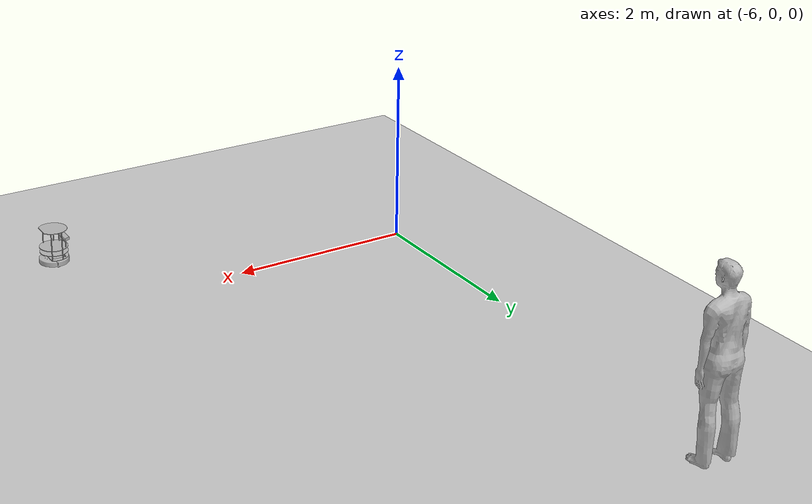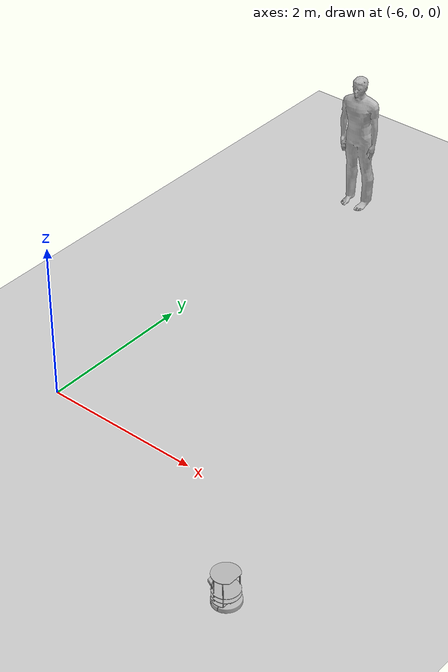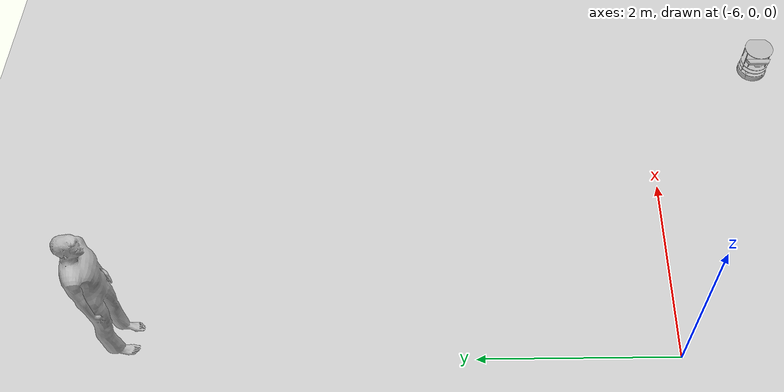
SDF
<sdf version="1.6">
 <world name="default">
  <light name="sun" type="directional">
   <pose>0 0 10 0 -0 0</pose>
   <diffuse>0.8 0.8 0.8 1</diffuse>
   <specular>0.1 0.1 0.1 1</specular>
   <attenuation>
    <range>1000</range>
    <constant>0.9</constant>
    <linear>0.01</linear>
    <quadratic>0.001</quadratic>
   </attenuation>
   <direction>-0.5 0.5 -1</direction>
  </light>
  <model name="ground_plane">
   <static>1</static>
   <link name="link">
    <collision name="collision">
     <geometry><plane><normal>0 0 1</normal><size>100 100</size></plane></geometry>
     <surface><friction><ode><mu>100</mu><mu2>50</mu2></ode></friction></surface>
    </collision>
    <visual name="visual">
     <cast_shadows>0</cast_shadows>
     <geometry><plane><normal>0 0 1</normal><size>100 100</size></plane></geometry>
     <material>
      <script><uri>file://media/materials/scripts/gazebo.material</uri><name>Gazebo/Grey</name></script>
     </material>
    </visual>
   </link>
  </model>
  <gravity>0 0 -9.8</gravity>
  <magnetic_field>6e-06 2.3e-05 -4.2e-05</magnetic_field>
  <atmosphere type="adiabatic"/>
  <physics name="default_physics" default="0" type="ode">
   <max_step_size>0.001</max_step_size>
   <real_time_factor>1</real_time_factor>
   <real_time_update_rate>1000</real_time_update_rate>
  </physics>
  <scene><ambient>0.4 0.4 0.4 1</ambient><background>0.7 0.7 0.7 1</background><shadows>1</shadows></scene>
  <spherical_coordinates>
   <surface_model>EARTH_WGS84</surface_model>
   <latitude_deg>0</latitude_deg>
   <longitude_deg>0</longitude_deg>
   <elevation>0</elevation>
   <heading_deg>0</heading_deg>
  </spherical_coordinates>
  <model name="person_standing">
   <link name="link">
    <inertial>
     <pose>0 -0.1 0.95 0 -0 0</pose>
     <mass>80</mass>
     <inertia><ixx>24.88</ixx><ixy>0</ixy><ixz>0</ixz><iyy>25.73</iyy><iyz>0</iyz><izz>2.48</izz></inertia>
    </inertial>
    <collision name="bottom">
     <pose>0 -0.1 0.01 0 -0 0</pose>
     <geometry><box><size>0.5 0.35 0.02</size></box></geometry>
    </collision>
    <collision name="person">
     <pose>0 0 0.02 0.04 -0 0</pose>
     <geometry><mesh><uri>model://person_standing/meshes/standing.dae</uri><scale>1 1 1</scale></mesh></geometry>
    </collision>
    <visual name="visual">
     <pose>0 0 0.02 0.04 -0 0</pose>
     <geometry><mesh><uri>model://person_standing/meshes/standing.dae</uri><scale>1 1 1</scale></mesh></geometry>
    </visual>
   </link>
   <pose>-5.7513 5.51558 -1e-06 -1e-06 1e-06 -0.000272</pose>
  </model>
  <model name="turtlebot">
   <link name="rack">
    <inertial>
     <pose>0.001453 -0.000453 0.029787 0 -0 0</pose>
     <inertia>
      <ixx>0.05864</ixx>
      <ixy>0.000124</ixy>
      <ixz>0.000615</ixz>
      <iyy>0.058786</iyy>
      <iyz>1.4e-05</iyz>
      <izz>1.53244</izz>
     </inertia>
     <mass>2.234</mass>
    </inertial>
    <collision name="plate_0_collision">
     <pose>-0.04334 0 0.084757 0 -0 0</pose>
     <geometry><box><size>0.233502 0.314845 0.006401</size></box></geometry>
    </collision>
    <visual name="plate_0_visual">
     <pose>-0.04334 0 0.084757 0 -0 0</pose>
     <geometry><mesh><uri>model://turtlebot/meshes/plate_0_logo.dae</uri><scale>1 1 1</scale></mesh></geometry>
    </visual>
    <collision name="plate_1_collision">
     <pose>-0.00266 0 0.141907 0 -0 0</pose>
     <geometry><box><size>0.314856 0.314856 0.006401</size></box></geometry>
    </collision>
    <visual name="plate_1_visual">
     <pose>-0.00266 0 0.141907 0 -0 0</pose>
     <geometry><mesh><uri>model://turtlebot/meshes/plate_1_logo.dae</uri><scale>1 1 1</scale></mesh></geometry>
    </visual>
    <collision name="plate_2_collision">
     <pose>-0.00266 0 0.199108 0 -0 0</pose>
     <geometry><box><size>0.314856 0.314856 0.006401</size></box></geometry>
    </collision>
    <visual name="plate_2_visual">
     <pose>-0.00266 0 0.199108 0 -0 0</pose>
     <geometry><mesh><uri>model://turtlebot/meshes/plate_1_logo.dae</uri><scale>1 1 1</scale></mesh></geometry>
    </visual>
    <collision name="plate_3_collision">
     <pose>-0.01582 0 0.405457 0 -0 0</pose>
     <geometry><box><size>0.288 0.315 0.006401</size></box></geometry>
    </collision>
    <visual name="plate_3_visual">
     <pose>-0.01582 0 0.405457 0 -0 0</pose>
     <geometry><mesh><uri>model://turtlebot/meshes/plate_2_logo.dae</uri><scale>1 1 1</scale></mesh></geometry>
    </visual>
    <collision name="spacer_0_collision">
     <pose>-0.00254 0.111468 0.079992 0 -0 0</pose>
     <geometry><cylinder><radius>0.0127</radius><length>0.003175</length></cylinder></geometry>
    </collision>
    <visual name="spacer_0_visual">
     <pose>-0.00254 0.111468 0.079992 0 -0 0</pose>
     <geometry>
      <mesh><uri>model://turtlebot/meshes/68-02403-125_Spacer.dae</uri><scale>1 1 1</scale></mesh>
     </geometry>
    </visual>
    <collision name="spacer_1_collision">
     <pose>-0.00254 -0.111468 0.079992 0 -0 0</pose>
     <geometry><cylinder><radius>0.0127</radius><length>0.003175</length></cylinder></geometry>
    </collision>
    <visual name="spacer_1_visual">
     <pose>-0.00254 -0.111468 0.079992 0 -0 0</pose>
     <geometry>
      <mesh><uri>model://turtlebot/meshes/68-02403-125_Spacer.dae</uri><scale>1 1 1</scale></mesh>
     </geometry>
    </visual>
    <collision name="spacer_2_collision">
     <pose>-0.07239 -0.111468 0.079992 0 -0 0</pose>
     <geometry><cylinder><radius>0.0127</radius><length>0.003175</length></cylinder></geometry>
    </collision>
    <visual name="spacer_2_visual">
     <pose>-0.07239 -0.111468 0.079992 0 -0 0</pose>
     <geometry>
      <mesh><uri>model://turtlebot/meshes/68-02403-125_Spacer.dae</uri><scale>1 1 1</scale></mesh>
     </geometry>
    </visual>
    <collision name="spacer_3_collision">
     <pose>-0.07239 0.111468 0.079992 0 -0 0</pose>
     <geometry><cylinder><radius>0.0127</radius><length>0.003175</length></cylinder></geometry>
    </collision>
    <visual name="spacer_3_visual">
     <pose>-0.07239 0.111468 0.079992 0 -0 0</pose>
     <geometry>
      <mesh><uri>model://turtlebot/meshes/68-02403-125_Spacer.dae</uri><scale>1 1 1</scale></mesh>
     </geometry>
    </visual>
    <collision name="standoff_2in_0_collision">
     <pose>0.06764 0.13142 0.08798 0 -0 0</pose>
     <geometry><cylinder><radius>0.0381</radius><length>0.0635</length></cylinder></geometry>
    </collision>
    <visual name="standoff_2in_0_visual">
     <pose>0.06764 0.13142 0.08798 0 -0 0</pose>
     <geometry>
      <mesh>
       <uri>model://turtlebot/meshes/68-04552-2000-RA_Turtlebot_M-F_Standoff.dae</uri>
       <scale>1 1 1</scale>
      </mesh>
     </geometry>
    </visual>
    <collision name="standoff_2in_1_collision">
     <pose>0.06764 -0.13142 0.08798 0 -0 0</pose>
     <geometry><cylinder><radius>0.0381</radius><length>0.0635</length></cylinder></geometry>
    </collision>
    <visual name="standoff_2in_1_visual">
     <pose>0.06764 -0.13142 0.08798 0 -0 0</pose>
     <geometry>
      <mesh>
       <uri>model://turtlebot/meshes/68-04552-2000-RA_Turtlebot_M-F_Standoff.dae</uri>
       <scale>1 1 1</scale>
      </mesh>
     </geometry>
    </visual>
    <collision name="standoff_2in_2_collision">
     <pose>-0.052832 -0.13142 0.08798 0 -0 0</pose>
     <geometry><cylinder><radius>0.0381</radius><length>0.0635</length></cylinder></geometry>
    </collision>
    <visual name="standoff_2in_2_visual">
     <pose>-0.052832 -0.13142 0.08798 0 -0 0</pose>
     <geometry>
      <mesh>
       <uri>model://turtlebot/meshes/68-04552-2000-RA_Turtlebot_M-F_Standoff.dae</uri>
       <scale>1 1 1</scale>
      </mesh>
     </geometry>
    </visual>
    <collision name="standoff_2in_3_collision">
     <pose>-0.052832 0.13142 0.08798 0 -0 0</pose>
     <geometry><cylinder><radius>0.0381</radius><length>0.0635</length></cylinder></geometry>
    </collision>
    <visual name="standoff_2in_3_visual">
     <pose>-0.052832 0.13142 0.08798 0 -0 0</pose>
     <geometry>
      <mesh>
       <uri>model://turtlebot/meshes/68-04552-2000-RA_Turtlebot_M-F_Standoff.dae</uri>
       <scale>1 1 1</scale>
      </mesh>
     </geometry>
    </visual>
    <collision name="standoff_2in_4_collision">
     <pose>0.06764 0.13142 0.14513 0 -0 0</pose>
     <geometry><cylinder><radius>0.0381</radius><length>0.0635</length></cylinder></geometry>
    </collision>
    <visual name="standoff_2in_4_visual">
     <pose>0.06764 0.13142 0.14513 0 -0 0</pose>
     <geometry>
      <mesh>
       <uri>model://turtlebot/meshes/68-04552-2000-RA_Turtlebot_M-F_Standoff.dae</uri>
       <scale>1 1 1</scale>
      </mesh>
     </geometry>
    </visual>
    <collision name="standoff_2in_5_collision">
     <pose>0.06764 -0.13142 0.14513 0 -0 0</pose>
     <geometry><cylinder><radius>0.0381</radius><length>0.0635</length></cylinder></geometry>
    </collision>
    <visual name="standoff_2in_5_visual">
     <pose>0.06764 -0.13142 0.14513 0 -0 0</pose>
     <geometry>
      <mesh>
       <uri>model://turtlebot/meshes/68-04552-2000-RA_Turtlebot_M-F_Standoff.dae</uri>
       <scale>1 1 1</scale>
      </mesh>
     </geometry>
    </visual>
    <collision name="standoff_2in_6_collision">
     <pose>-0.052832 -0.13142 0.14513 0 -0 0</pose>
     <geometry><cylinder><radius>0.0381</radius><length>0.0635</length></cylinder></geometry>
    </collision>
    <visual name="standoff_2in_6_visual">
     <pose>-0.052832 -0.13142 0.14513 0 -0 0</pose>
     <geometry>
      <mesh>
       <uri>model://turtlebot/meshes/68-04552-2000-RA_Turtlebot_M-F_Standoff.dae</uri>
       <scale>1 1 1</scale>
      </mesh>
     </geometry>
    </visual>
    <collision name="standoff_2in_7_collision">
     <pose>-0.052832 0.13142 0.14513 0 -0 0</pose>
     <geometry><cylinder><radius>0.0381</radius><length>0.0635</length></cylinder></geometry>
    </collision>
    <visual name="standoff_2in_7_visual">
     <pose>-0.052832 0.13142 0.14513 0 -0 0</pose>
     <geometry>
      <mesh>
       <uri>model://turtlebot/meshes/68-04552-2000-RA_Turtlebot_M-F_Standoff.dae</uri>
       <scale>1 1 1</scale>
      </mesh>
     </geometry>
    </visual>
    <collision name="standoff_8in_0_collision">
     <pose>0.06764 0.13142 0.20228 0 -0 0</pose>
     <geometry><cylinder><radius>0.011113</radius><length>0.2032</length></cylinder></geometry>
    </collision>
    <visual name="standoff_8in_0_visual">
     <pose>0.06764 0.13142 0.20228 0 -0 0</pose>
     <geometry>
      <mesh>
       <uri>model://turtlebot/meshes/68-02421-8000-RA_Turtlebot_F-F_Standoff.dae</uri>
       <scale>1 1 1</scale>
      </mesh>
     </geometry>
    </visual>
    <collision name="standoff_8in_1_collision">
     <pose>0.06764 -0.13142 0.20228 0 -0 0</pose>
     <geometry><cylinder><radius>0.011113</radius><length>0.2032</length></cylinder></geometry>
    </collision>
    <visual name="standoff_8in_1_visual">
     <pose>0.06764 -0.13142 0.20228 0 -0 0</pose>
     <geometry>
      <mesh>
       <uri>model://turtlebot/meshes/68-02421-8000-RA_Turtlebot_F-F_Standoff.dae</uri>
       <scale>1 1 1</scale>
      </mesh>
     </geometry>
    </visual>
    <collision name="standoff_8in_2_collision">
     <pose>-0.052832 -0.13142 0.20228 0 -0 0</pose>
     <geometry><cylinder><radius>0.011113</radius><length>0.2032</length></cylinder></geometry>
    </collision>
    <visual name="standoff_8in_2_visual">
     <pose>-0.052832 -0.13142 0.20228 0 -0 0</pose>
     <geometry>
      <mesh>
       <uri>model://turtlebot/meshes/68-02421-8000-RA_Turtlebot_F-F_Standoff.dae</uri>
       <scale>1 1 1</scale>
      </mesh>
     </geometry>
    </visual>
    <collision name="standoff_8in_3_collision">
     <pose>-0.052832 0.13142 0.20228 0 -0 0</pose>
     <geometry><cylinder><radius>0.011113</radius><length>0.2032</length></cylinder></geometry>
    </collision>
    <visual name="standoff_8in_3_visual">
     <pose>-0.052832 0.13142 0.20228 0 -0 0</pose>
     <geometry>
      <mesh>
       <uri>model://turtlebot/meshes/68-02421-8000-RA_Turtlebot_F-F_Standoff.dae</uri>
       <scale>1 1 1</scale>
      </mesh>
     </geometry>
    </visual>
    <collision name="standoff_kinect_0_collision">
     <pose>-0.105098 0.098 0.202308 0 -0 0</pose>
     <geometry><cylinder><radius>0.001111</radius><length>0.008585</length></cylinder></geometry>
    </collision>
    <visual name="standoff_kinect_0_visual">
     <pose>-0.105098 0.098 0.202308 0 -0 0</pose>
     <geometry>
      <mesh><uri>model://turtlebot/meshes/68-04556-RA_Kinect_Standoff_Assy.dae</uri><scale>1 1 1</scale></mesh>
     </geometry>
    </visual>
    <collision name="standoff_kinect_1_collision">
     <pose>-0.105098 -0.098 0.202308 0 -0 0</pose>
     <geometry><cylinder><radius>0.001111</radius><length>0.008585</length></cylinder></geometry>
    </collision>
    <visual name="standoff_kinect_1_visual">
     <pose>-0.105098 -0.098 0.202308 0 -0 0</pose>
     <geometry>
      <mesh><uri>model://turtlebot/meshes/68-04556-RA_Kinect_Standoff_Assy.dae</uri><scale>1 1 1</scale></mesh>
     </geometry>
    </visual>
    <sensor name="laser" type="ray">
     <pose>-0.065 0 0.092 0 -0 0</pose>
     <ray>
      <scan>
       <horizontal>
        <samples>180</samples>
        <resolution>1</resolution>
        <min_angle>-2.26893</min_angle>
        <max_angle>2.26893</max_angle>
       </horizontal>
       <vertical><samples>1</samples><min_angle>0</min_angle><max_angle>0</max_angle></vertical>
      </scan>
      <range><min>0.08</min><max>10</max><resolution>0.01</resolution></range>
     </ray>
     <update_rate>20</update_rate>
    </sensor>
   </link>
   <link name="create::base">
    <inertial>
     <pose>0.001453 -0.000453 0.029787 0 -0 0</pose>
     <inertia>
      <ixx>0.05864</ixx>
      <ixy>0.000124</ixy>
      <ixz>0.000615</ixz>
      <iyy>0.058786</iyy>
      <iyz>1.4e-05</iyz>
      <izz>1.53244</izz>
     </inertia>
     <mass>2.234</mass>
    </inertial>
    <collision name="base_collision">
     <pose>0 0 0.0478 0 -0 0</pose>
     <geometry><cylinder><radius>0.016495</radius><length>0.061163</length></cylinder></geometry>
    </collision>
    <visual name="base_visual">
     <pose>0 0 0.0478 0 -0 0</pose>
     <geometry><mesh><uri>model://create/meshes/create_body.dae</uri><scale>1 1 1</scale></mesh></geometry>
    </visual>
    <collision name="front_wheel_collision">
     <pose>0.13 0 0.017 -0 1.5707 1.5707</pose>
     <geometry><sphere><radius>0.018</radius></sphere></geometry>
     <surface>
      <friction><ode><mu>0</mu><mu2>0</mu2><fdir1>0 0 0</fdir1><slip1>0</slip1><slip2>0</slip2></ode></friction>
     </surface>
    </collision>
    <visual name="front_wheel_visual">
     <pose>0.13 0 0.017 -0 1.5707 1.5707</pose>
     <geometry><sphere><radius>0.009</radius></sphere></geometry>
    </visual>
    <collision name="rear_wheel_collision">
     <pose>-0.13 0 0.017 -0 1.5707 1.5707</pose>
     <geometry><sphere><radius>0.015</radius></sphere></geometry>
     <surface>
      <friction><ode><mu>0</mu><mu2>0</mu2><fdir1>0 0 0</fdir1><slip1>0</slip1><slip2>0</slip2></ode></friction>
     </surface>
    </collision>
    <visual name="rear_wheel_visual">
     <pose>-0.13 0 0.017 -0 1.5707 1.5707</pose>
     <geometry><sphere><radius>0.0075</radius></sphere></geometry>
    </visual>
    <sensor name="left_cliff_sensor" type="ray">
     <pose>0.07 0.14 0.027 0 1.57079 0</pose>
     <ray>
      <scan>
       <horizontal>
        <samples>1</samples>
        <resolution>1</resolution>
        <min_angle>0</min_angle>
        <max_angle>0</max_angle>
       </horizontal>
       <vertical><samples>1</samples><min_angle>0</min_angle><max_angle>0</max_angle></vertical>
      </scan>
      <range><min>0.01</min><max>0.04</max><resolution>0.1</resolution></range>
     </ray>
    </sensor>
    <sensor name="leftfront_cliff_sensor" type="ray">
     <pose>0.15 0.04 0.027 0 1.57079 0</pose>
     <ray>
      <scan>
       <horizontal>
        <samples>1</samples>
        <resolution>1</resolution>
        <min_angle>0</min_angle>
        <max_angle>0</max_angle>
       </horizontal>
       <vertical><samples>1</samples><min_angle>0</min_angle><max_angle>0</max_angle></vertical>
      </scan>
      <range><min>0.01</min><max>0.04</max><resolution>0.1</resolution></range>
     </ray>
    </sensor>
    <sensor name="right_cliff_sensor" type="ray">
     <pose>0.07 -0.14 0.027 0 1.57079 0</pose>
     <ray>
      <scan>
       <horizontal>
        <samples>1</samples>
        <resolution>1</resolution>
        <min_angle>0</min_angle>
        <max_angle>0</max_angle>
       </horizontal>
       <vertical><samples>1</samples><min_angle>0</min_angle><max_angle>0</max_angle></vertical>
      </scan>
      <range><min>0.01</min><max>0.04</max><resolution>0.1</resolution></range>
     </ray>
    </sensor>
    <sensor name="rightfront_cliff_sensor" type="ray">
     <pose>0.15 -0.04 0.027 0 1.57079 0</pose>
     <ray>
      <scan>
       <horizontal>
        <samples>1</samples>
        <resolution>1</resolution>
        <min_angle>0</min_angle>
        <max_angle>0</max_angle>
       </horizontal>
       <vertical><samples>1</samples><min_angle>0</min_angle><max_angle>0</max_angle></vertical>
      </scan>
      <range><min>0.01</min><max>0.04</max><resolution>0.1</resolution></range>
     </ray>
    </sensor>
    <sensor name="wall_sensor" type="ray">
     <pose>0.09 -0.12 0.059 0 0 -1</pose>
     <ray>
      <scan>
       <horizontal>
        <samples>1</samples>
        <resolution>1</resolution>
        <min_angle>0</min_angle>
        <max_angle>0</max_angle>
       </horizontal>
       <vertical><samples>1</samples><min_angle>0</min_angle><max_angle>0</max_angle></vertical>
      </scan>
      <range><min>0.016</min><max>0.04</max><resolution>0.1</resolution></range>
     </ray>
    </sensor>
   </link>
   <link name="create::left_wheel">
    <pose>0 0.13 0.032 0 -0 0</pose>
    <inertial>
     <inertia><ixx>0.001</ixx><ixy>0</ixy><ixz>0</ixz><iyy>0.001</iyy><iyz>0</iyz><izz>0.001</izz></inertia>
     <mass>0.01</mass>
    </inertial>
    <collision name="collision">
     <pose>0 0 0 -0 1.5707 1.5707</pose>
     <geometry><cylinder><radius>0.033</radius><length>0.023</length></cylinder></geometry>
     <surface>
      <friction><ode><mu>10</mu><mu2>10</mu2><fdir1>0 0 0</fdir1><slip1>0</slip1><slip2>0</slip2></ode></friction>
     </surface>
    </collision>
    <visual name="visual">
     <pose>0 0 0 -0 1.5707 1.5707</pose>
     <geometry><cylinder><radius>0.033</radius><length>0.023</length></cylinder></geometry>
    </visual>
   </link>
   <link name="create::right_wheel">
    <pose>0 -0.13 0.032 0 -0 0</pose>
    <inertial>
     <inertia><ixx>0.001</ixx><ixy>0</ixy><ixz>0</ixz><iyy>0.001</iyy><iyz>0</iyz><izz>0.001</izz></inertia>
     <mass>0.01</mass>
    </inertial>
    <collision name="collision">
     <pose>0 0 0 -0 1.5707 1.5707</pose>
     <geometry><cylinder><radius>0.033</radius><length>0.023</length></cylinder></geometry>
     <surface>
      <friction><ode><mu>10</mu><mu2>10</mu2><fdir1>0 0 0</fdir1><slip1>0</slip1><slip2>0</slip2></ode></friction>
     </surface>
    </collision>
    <visual name="visual">
     <pose>0 0 0 -0 1.5707 1.5707</pose>
     <geometry><cylinder><radius>0.033</radius><length>0.023</length></cylinder></geometry>
    </visual>
   </link>
   <joint name="create::left_wheel" type="revolute">
    <parent>create::base</parent>
    <child>create::left_wheel</child>
    <axis>
     <xyz>0 1 0</xyz>
     <use_parent_model_frame>1</use_parent_model_frame>
     <limit><lower>-1e+16</lower><upper>1e+16</upper></limit>
     <dynamics><spring_reference>0</spring_reference><spring_stiffness>0</spring_stiffness></dynamics>
    </axis>
   </joint>
   <joint name="create::right_wheel" type="revolute">
    <parent>create::base</parent>
    <child>create::right_wheel</child>
    <axis>
     <xyz>0 1 0</xyz>
     <use_parent_model_frame>1</use_parent_model_frame>
     <limit><lower>-1e+16</lower><upper>1e+16</upper></limit>
     <dynamics><spring_reference>0</spring_reference><spring_stiffness>0</spring_stiffness></dynamics>
    </axis>
   </joint>
   <link name="kinect::link">
    <inertial>
     <mass>0.1</mass>
     <inertia><ixx>1</ixx><ixy>0</ixy><ixz>0</ixz><iyy>1</iyy><iyz>0</iyz><izz>1</izz></inertia>
    </inertial>
    <collision name="collision"><geometry><box><size>0.073 0.276 0.072</size></box></geometry></collision>
    <visual name="visual">
     <geometry><mesh><uri>model://kinect/meshes/kinect.dae</uri><scale>1 1 1</scale></mesh></geometry>
    </visual>
    <sensor name="camera" type="depth">
     <update_rate>20</update_rate>
     <camera name="__default__">
      <horizontal_fov>1.0472</horizontal_fov>
      <image><width>640</width><height>480</height><format>R8G8B8</format></image>
      <clip><near>0.05</near><far>3</far></clip>
     </camera>
    </sensor>
    <pose>-0.087098 0 0.303857 0 -0 0</pose>
   </link>
   <joint name="create_rack" type="revolute">
    <parent>create::base</parent>
    <child>rack</child>
    <axis>
     <xyz>0 0 1</xyz>
     <limit><lower>0</lower><upper>0</upper></limit>
     <use_parent_model_frame>1</use_parent_model_frame>
     <dynamics><spring_reference>0</spring_reference><spring_stiffness>0</spring_stiffness></dynamics>
    </axis>
   </joint>
   <joint name="kinect_rack" type="revolute">
    <parent>kinect::link</parent>
    <child>rack</child>
    <axis>
     <xyz>0 0 1</xyz>
     <limit><lower>0</lower><upper>0</upper></limit>
     <use_parent_model_frame>1</use_parent_model_frame>
     <dynamics><spring_reference>0</spring_reference><spring_stiffness>0</spring_stiffness></dynamics>
    </axis>
   </joint>
   <pose>-2.355 -1.30864 0.000824 -0.000175 -0.020865 -0.000211</pose>
  </model>
 </world>
</sdf>
